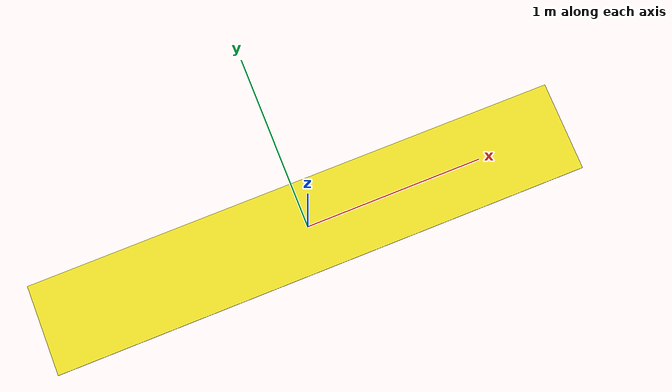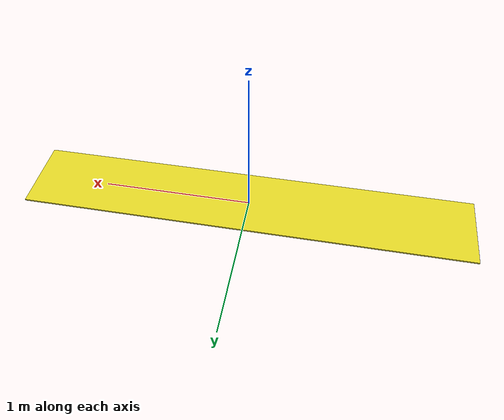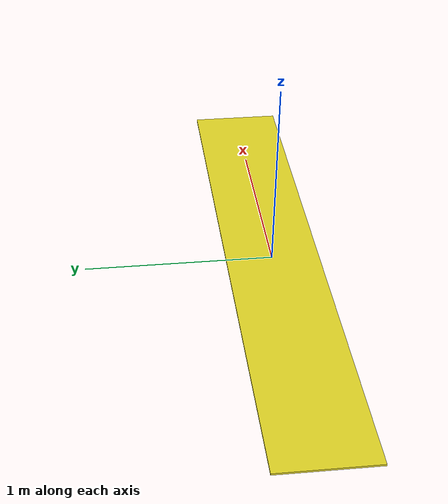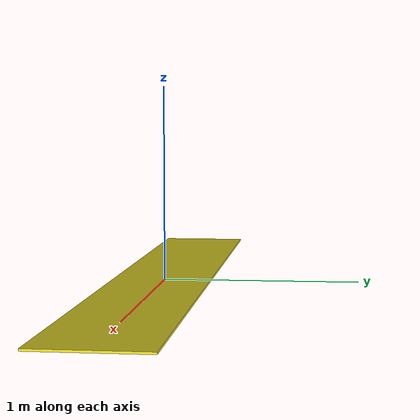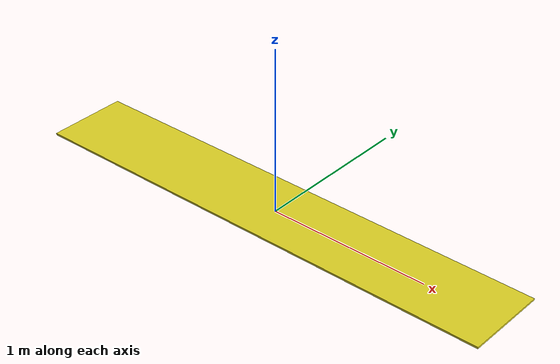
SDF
<?xml version="1.0"?>
<sdf version="1.6">
  <model name="intersection_marker">
    <static>true</static>
    <pose>0 0 0.01 0 0 0</pose> <!-- Position just above ground -->
    <link name="link">
      <visual name="visual">
        <geometry>
          <box>
            <size>3 0.5 0.01</size> <!-- Flat, 3x3 meters -->
          </box>
        </geometry>
        <material>
          <script>
            <uri>file://media/materials/scripts/gazebo.material</uri>
            <name>Gazebo/Yellow</name> <!-- Yellow color for intersection marker -->
          </script>
        </material>
      </visual>
      <!-- No collision element to avoid physical interaction -->
    </link>
  </model>
</sdf>
